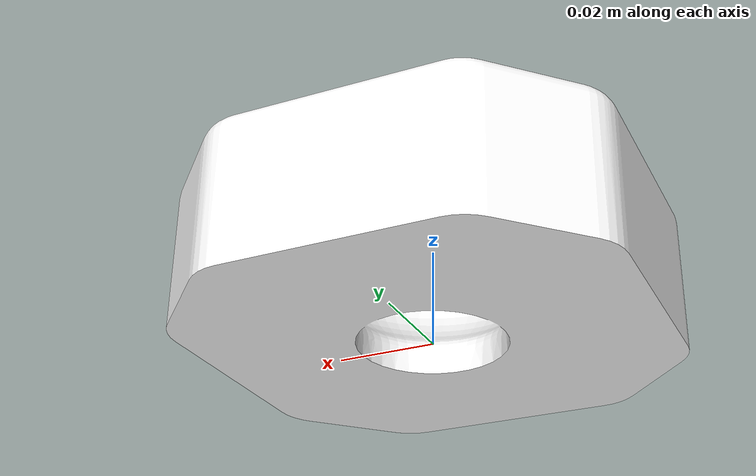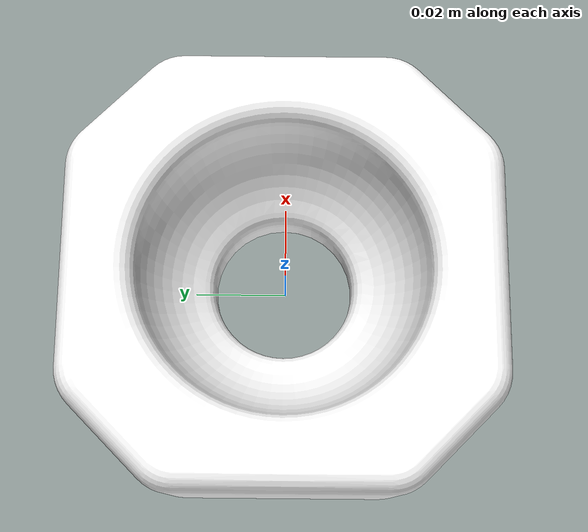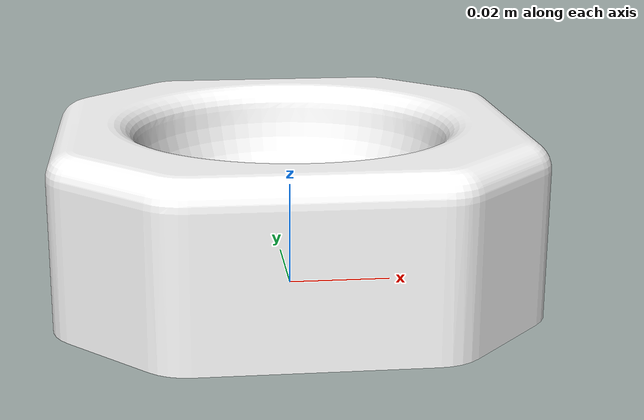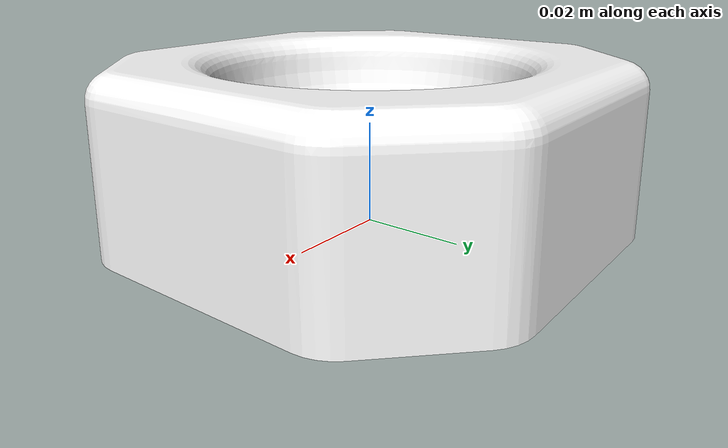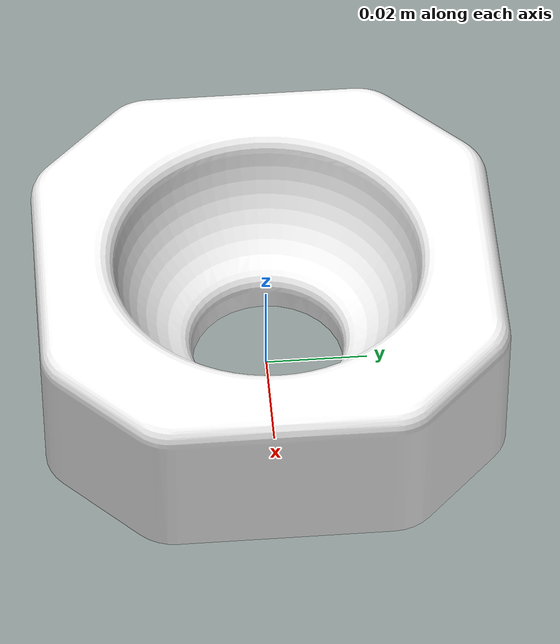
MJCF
<mujoco model="socket_dia60_cov180">
  <default>
    <default class="visual">
      <geom group="2" type="mesh" contype="0" conaffinity="0"/>
    </default>
    <default class="collision">
      <geom group="3" type="mesh"/>
    </default>
  </default>
  <asset>
    <material name="white_high_gloss_plastic" specular="1.0" shininess="0.005212761999999999" rgba="1.000000 1.000000 1.000000 1.000000"/>
    <mesh file="socket_dia60_cov180/socket_dia60_cov180.obj"/>
    <mesh file="socket_dia60_cov180/socket_dia60_cov180_collision_0.obj"/>
    <mesh file="socket_dia60_cov180/socket_dia60_cov180_collision_1.obj"/>
    <mesh file="socket_dia60_cov180/socket_dia60_cov180_collision_2.obj"/>
    <mesh file="socket_dia60_cov180/socket_dia60_cov180_collision_3.obj"/>
    <mesh file="socket_dia60_cov180/socket_dia60_cov180_collision_4.obj"/>
    <mesh file="socket_dia60_cov180/socket_dia60_cov180_collision_5.obj"/>
    <mesh file="socket_dia60_cov180/socket_dia60_cov180_collision_6.obj"/>
    <mesh file="socket_dia60_cov180/socket_dia60_cov180_collision_7.obj"/>
    <mesh file="socket_dia60_cov180/socket_dia60_cov180_collision_8.obj"/>
    <mesh file="socket_dia60_cov180/socket_dia60_cov180_collision_9.obj"/>
    <mesh file="socket_dia60_cov180/socket_dia60_cov180_collision_10.obj"/>
    <mesh file="socket_dia60_cov180/socket_dia60_cov180_collision_11.obj"/>
    <mesh file="socket_dia60_cov180/socket_dia60_cov180_collision_12.obj"/>
    <mesh file="socket_dia60_cov180/socket_dia60_cov180_collision_13.obj"/>
    <mesh file="socket_dia60_cov180/socket_dia60_cov180_collision_14.obj"/>
    <mesh file="socket_dia60_cov180/socket_dia60_cov180_collision_15.obj"/>
    <mesh file="socket_dia60_cov180/socket_dia60_cov180_collision_16.obj"/>
    <mesh file="socket_dia60_cov180/socket_dia60_cov180_collision_17.obj"/>
    <mesh file="socket_dia60_cov180/socket_dia60_cov180_collision_18.obj"/>
    <mesh file="socket_dia60_cov180/socket_dia60_cov180_collision_19.obj"/>
    <mesh file="socket_dia60_cov180/socket_dia60_cov180_collision_20.obj"/>
    <mesh file="socket_dia60_cov180/socket_dia60_cov180_collision_21.obj"/>
    <mesh file="socket_dia60_cov180/socket_dia60_cov180_collision_22.obj"/>
    <mesh file="socket_dia60_cov180/socket_dia60_cov180_collision_23.obj"/>
    <mesh file="socket_dia60_cov180/socket_dia60_cov180_collision_24.obj"/>
    <mesh file="socket_dia60_cov180/socket_dia60_cov180_collision_25.obj"/>
    <mesh file="socket_dia60_cov180/socket_dia60_cov180_collision_26.obj"/>
    <mesh file="socket_dia60_cov180/socket_dia60_cov180_collision_27.obj"/>
    <mesh file="socket_dia60_cov180/socket_dia60_cov180_collision_28.obj"/>
    <mesh file="socket_dia60_cov180/socket_dia60_cov180_collision_29.obj"/>
    <mesh file="socket_dia60_cov180/socket_dia60_cov180_collision_30.obj"/>
    <mesh file="socket_dia60_cov180/socket_dia60_cov180_collision_31.obj"/>
    <mesh file="socket_dia60_cov180/socket_dia60_cov180_collision_32.obj"/>
    <mesh file="socket_dia60_cov180/socket_dia60_cov180_collision_33.obj"/>
    <mesh file="socket_dia60_cov180/socket_dia60_cov180_collision_34.obj"/>
    <mesh file="socket_dia60_cov180/socket_dia60_cov180_collision_35.obj"/>
    <mesh file="socket_dia60_cov180/socket_dia60_cov180_collision_36.obj"/>
    <mesh file="socket_dia60_cov180/socket_dia60_cov180_collision_37.obj"/>
    <mesh file="socket_dia60_cov180/socket_dia60_cov180_collision_38.obj"/>
    <mesh file="socket_dia60_cov180/socket_dia60_cov180_collision_39.obj"/>
    <mesh file="socket_dia60_cov180/socket_dia60_cov180_collision_40.obj"/>
    <mesh file="socket_dia60_cov180/socket_dia60_cov180_collision_41.obj"/>
    <mesh file="socket_dia60_cov180/socket_dia60_cov180_collision_42.obj"/>
    <mesh file="socket_dia60_cov180/socket_dia60_cov180_collision_43.obj"/>
    <mesh file="socket_dia60_cov180/socket_dia60_cov180_collision_44.obj"/>
    <mesh file="socket_dia60_cov180/socket_dia60_cov180_collision_45.obj"/>
    <mesh file="socket_dia60_cov180/socket_dia60_cov180_collision_46.obj"/>
    <mesh file="socket_dia60_cov180/socket_dia60_cov180_collision_47.obj"/>
  </asset>
  <worldbody>
    <body name="socket_dia60_cov180">
      <geom material="white_high_gloss_plastic" mesh="socket_dia60_cov180" class="visual"/>
      <geom mesh="socket_dia60_cov180_collision_0" rgba="0.6124103355949837 0.3402714298441608 0.0014173592319159933 1" class="collision"/>
      <geom mesh="socket_dia60_cov180_collision_1" rgba="0.21345904617325218 0.6578694183480074 0.24370449464160648 1" class="collision"/>
      <geom mesh="socket_dia60_cov180_collision_2" rgba="0.4473364856209555 0.26131155111008497 0.2604742935201959 1" class="collision"/>
      <geom mesh="socket_dia60_cov180_collision_3" rgba="0.06489659469481879 0.6501718943636248 0.24843494210078698 1" class="collision"/>
      <geom mesh="socket_dia60_cov180_collision_4" rgba="0.22540525903708475 0.6159026223535109 0.08632981598316691 1" class="collision"/>
      <geom mesh="socket_dia60_cov180_collision_5" rgba="0.007230833976899387 0.46877700833783953 0.8946388651618528 1" class="collision"/>
      <geom mesh="socket_dia60_cov180_collision_6" rgba="0.06570772573869987 0.7469198775709652 0.30595433653126514 1" class="collision"/>
      <geom mesh="socket_dia60_cov180_collision_7" rgba="0.03536868265064841 0.03850051924691544 0.6465546431301552 1" class="collision"/>
      <geom mesh="socket_dia60_cov180_collision_8" rgba="0.6669631015853126 0.5448951004363054 0.041865171158241954 1" class="collision"/>
      <geom mesh="socket_dia60_cov180_collision_9" rgba="0.17484397105566418 0.4954829583387327 0.9592892068558262 1" class="collision"/>
      <geom mesh="socket_dia60_cov180_collision_10" rgba="0.9813386123368733 0.8911665019633438 0.8488147042143698 1" class="collision"/>
      <geom mesh="socket_dia60_cov180_collision_11" rgba="0.4464250797146069 0.1165053216347034 0.32367307038855697 1" class="collision"/>
      <geom mesh="socket_dia60_cov180_collision_12" rgba="0.595601254798551 0.4210247997671843 0.3055984120162375 1" class="collision"/>
      <geom mesh="socket_dia60_cov180_collision_13" rgba="0.4222779443080704 0.4813071407668875 0.44218200762387694 1" class="collision"/>
      <geom mesh="socket_dia60_cov180_collision_14" rgba="0.6463707028747347 0.99538541921553 0.15074243604634807 1" class="collision"/>
      <geom mesh="socket_dia60_cov180_collision_15" rgba="0.6392946100183757 0.8480723719430008 0.6750868995921683 1" class="collision"/>
      <geom mesh="socket_dia60_cov180_collision_16" rgba="0.9908576530737672 3.8102171261544804e-05 0.6422835186317524 1" class="collision"/>
      <geom mesh="socket_dia60_cov180_collision_17" rgba="0.23993015998627176 0.3651243407337481 0.1960832481829453 1" class="collision"/>
      <geom mesh="socket_dia60_cov180_collision_18" rgba="0.5923295547372769 0.9019645094536867 0.5146168505724242 1" class="collision"/>
      <geom mesh="socket_dia60_cov180_collision_19" rgba="0.7205402344963597 0.30062514149098396 0.8078081887747669 1" class="collision"/>
      <geom mesh="socket_dia60_cov180_collision_20" rgba="0.6954127038474883 0.006690869781179942 0.3044122451217611 1" class="collision"/>
      <geom mesh="socket_dia60_cov180_collision_21" rgba="0.7461261313586713 0.35140514758051355 0.9705450407539702 1" class="collision"/>
      <geom mesh="socket_dia60_cov180_collision_22" rgba="0.9902961541482759 0.06699792911304292 0.3293983258919838 1" class="collision"/>
      <geom mesh="socket_dia60_cov180_collision_23" rgba="0.6975690759041407 0.07360263196134942 0.6689081483468694 1" class="collision"/>
      <geom mesh="socket_dia60_cov180_collision_24" rgba="0.2562690603322968 0.8757310549128391 0.974066819717117 1" class="collision"/>
      <geom mesh="socket_dia60_cov180_collision_25" rgba="0.12873879797544696 0.5482689684369231 0.06993536666087019 1" class="collision"/>
      <geom mesh="socket_dia60_cov180_collision_26" rgba="0.3560116231309306 0.7491438983103595 0.7128711037312103 1" class="collision"/>
      <geom mesh="socket_dia60_cov180_collision_27" rgba="0.10913444620887136 0.11825587855623143 0.14309567717358318 1" class="collision"/>
      <geom mesh="socket_dia60_cov180_collision_28" rgba="0.4045747197137013 0.7262752849985226 0.20300511417944944 1" class="collision"/>
      <geom mesh="socket_dia60_cov180_collision_29" rgba="0.6217879965315817 0.3325251220935408 0.8851838537319834 1" class="collision"/>
      <geom mesh="socket_dia60_cov180_collision_30" rgba="0.13477413160754514 0.5113612649549807 0.99316014868043 1" class="collision"/>
      <geom mesh="socket_dia60_cov180_collision_31" rgba="0.3655683524293193 0.16353306771328024 0.04600451601981792 1" class="collision"/>
      <geom mesh="socket_dia60_cov180_collision_32" rgba="0.2058222784651058 0.04213860216869558 0.19895026758142353 1" class="collision"/>
      <geom mesh="socket_dia60_cov180_collision_33" rgba="0.9774652968034605 0.7704691762964222 0.27323636689219544 1" class="collision"/>
      <geom mesh="socket_dia60_cov180_collision_34" rgba="0.2421921993060404 0.8479018626307107 0.8712168204390411 1" class="collision"/>
      <geom mesh="socket_dia60_cov180_collision_35" rgba="0.27530704265185957 0.20323097933939882 0.8500435055072911 1" class="collision"/>
      <geom mesh="socket_dia60_cov180_collision_36" rgba="0.8317559735333113 0.4866379894920876 0.6139161754973226 1" class="collision"/>
      <geom mesh="socket_dia60_cov180_collision_37" rgba="0.060389290045753885 0.49103244143647684 0.5063043522125512 1" class="collision"/>
      <geom mesh="socket_dia60_cov180_collision_38" rgba="0.8656563278653698 0.52270250047143 0.6113155573192535 1" class="collision"/>
      <geom mesh="socket_dia60_cov180_collision_39" rgba="0.9251245597717428 0.2040630214370316 0.7906077946568634 1" class="collision"/>
      <geom mesh="socket_dia60_cov180_collision_40" rgba="0.3826037733202561 0.23296368260112765 0.2345187982704796 1" class="collision"/>
      <geom mesh="socket_dia60_cov180_collision_41" rgba="0.12373919495112384 0.6022592576435815 0.2889340341831972 1" class="collision"/>
      <geom mesh="socket_dia60_cov180_collision_42" rgba="0.251273544398133 0.1736590854823774 0.9890165990250178 1" class="collision"/>
      <geom mesh="socket_dia60_cov180_collision_43" rgba="0.5622420052184214 0.8867245796454915 0.5502800741570983 1" class="collision"/>
      <geom mesh="socket_dia60_cov180_collision_44" rgba="0.846689462046305 0.7066830963155465 0.06036898282252112 1" class="collision"/>
      <geom mesh="socket_dia60_cov180_collision_45" rgba="0.15579435934368935 0.36171368055082287 0.8285874066456507 1" class="collision"/>
      <geom mesh="socket_dia60_cov180_collision_46" rgba="0.1538850643626124 0.6090960880992893 0.8250768791910245 1" class="collision"/>
      <geom mesh="socket_dia60_cov180_collision_47" rgba="0.934972277352591 0.4561664587987456 0.15994145323570663 1" class="collision"/>
    </body>
  </worldbody>
</mujoco>
